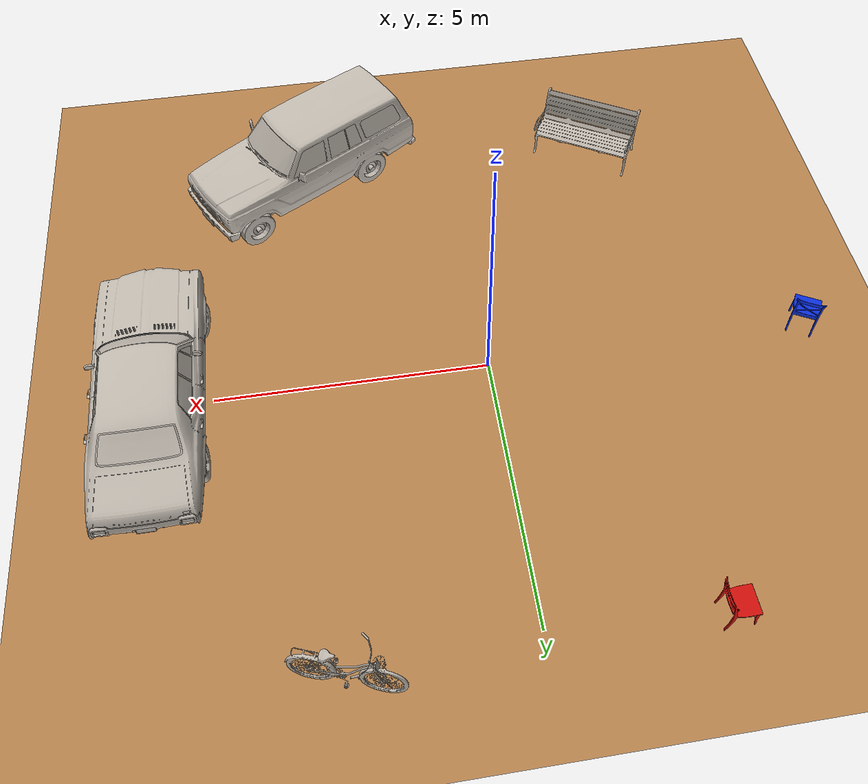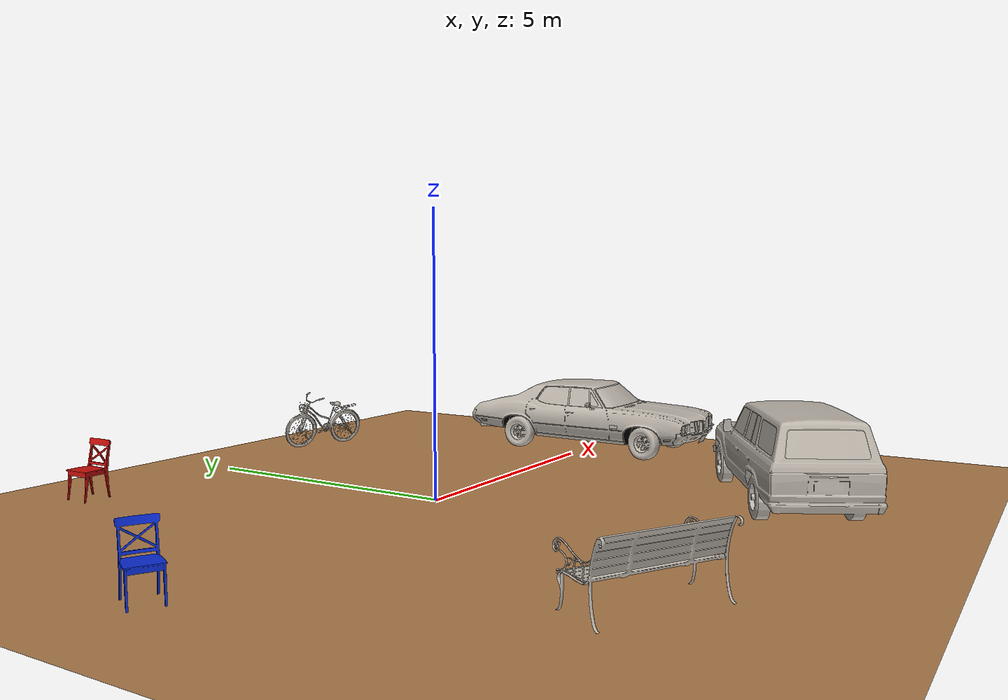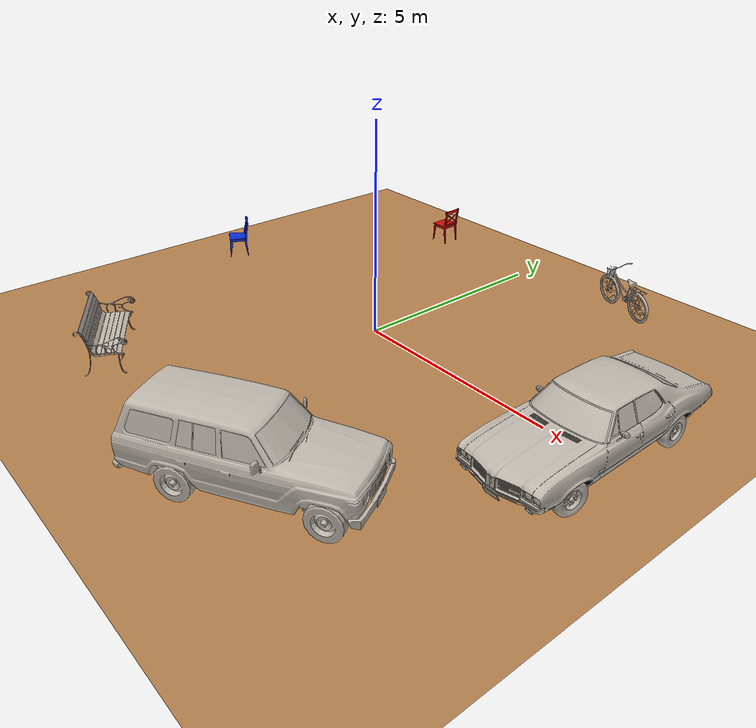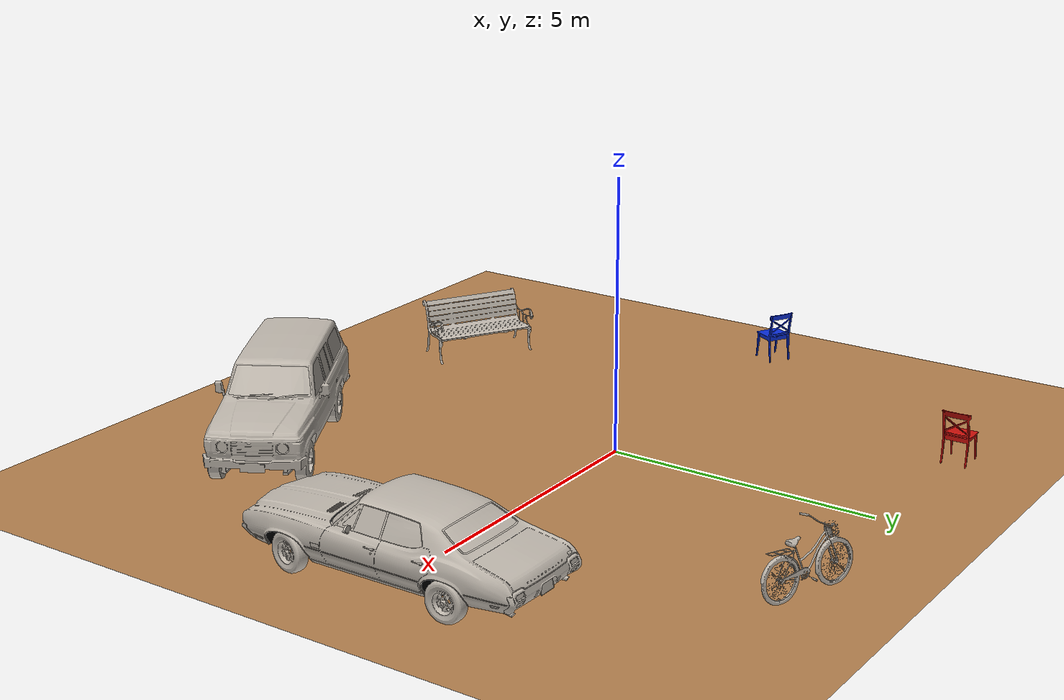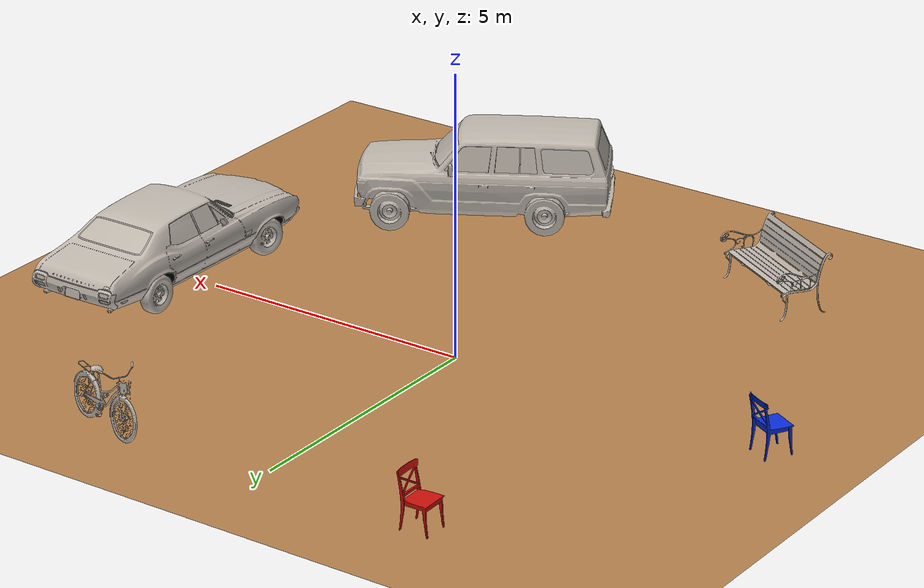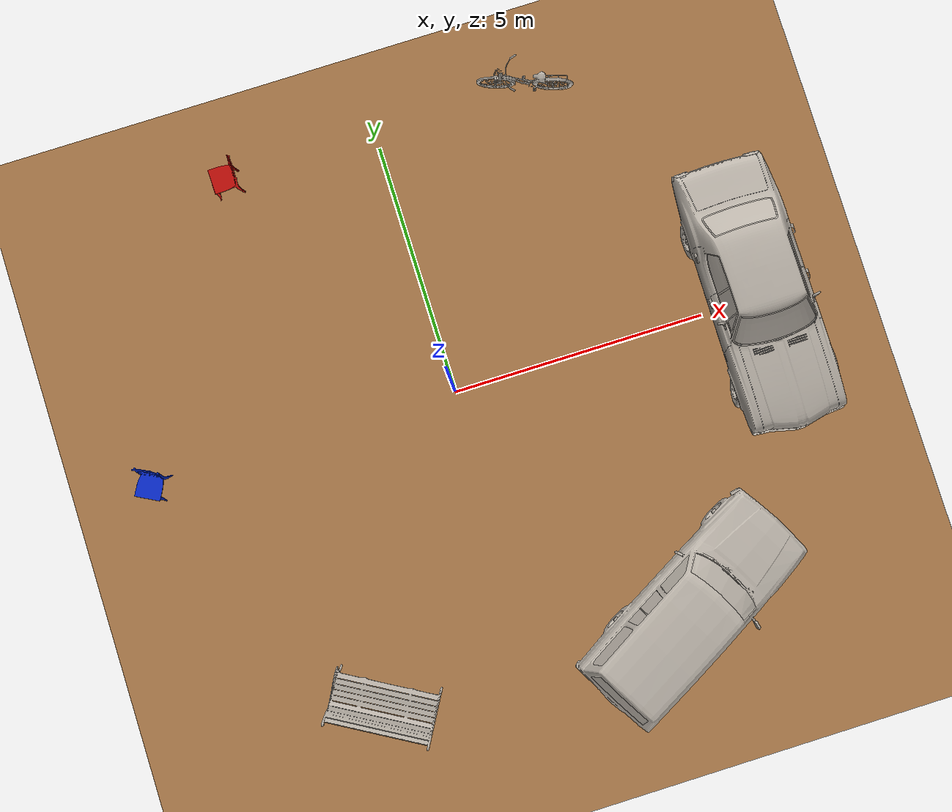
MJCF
<mujoco model="COCO object map">
  <compiler angle="degree" meshdir="meshes" texturedir="meshes" />
  <option timestep="0.002" gravity="0 0 -9.81" />
  <statistic center="0 0 0.6" extent="11" />
  <visual>
    <global azimuth="135" elevation="-25" />
    <quality shadowsize="2048" />
    <headlight ambient="0.35 0.35 0.35" diffuse="0.6 0.6 0.6" />
  </visual>
  <asset>
    <texture name="ground_birch" type="2d" file="birch_wood.png" />
    <material name="ground" texture="ground_birch" texuniform="true" texrepeat="1 1" reflectance="0.05" />
    <material name="red" rgba="0.8 0.06 0.04 1" />
    <material name="blue" rgba="0.04 0.18 0.85 1" />
    <mesh name="chair_mesh" file="chair.obj" />
    <mesh name="bench_mesh" file="bench.obj" />
    <texture name="bench_texture" type="2d" file="bench_texture.png" />
    <material name="bench_surface" texture="bench_texture" texuniform="false" rgba="1 1 1 1" />
    <mesh name="bicycle_mesh" file="bicycle.obj" />
    <texture name="bicycle_texture" type="2d" file="bicycle_texture.png" />
    <material name="bicycle_surface" texture="bicycle_texture" texuniform="false" rgba="1 1 1 1" />
    <mesh name="sedan_mesh" file="oldsmobile/oldsmobile_00.obj" />
    <texture name="oldsmobile_00_texture" type="2d" file="oldsmobile/oldsmobile_00.png" />
    <material name="oldsmobile_00_surface" rgba="1.0 1.0 1.0 1.0" specular="0.2" shininess="0.3" texture="oldsmobile_00_texture" texuniform="false" />
    <mesh name="sedan_mesh_01" file="oldsmobile/oldsmobile_01.obj" />
    <texture name="oldsmobile_01_texture" type="2d" file="oldsmobile/oldsmobile_01.png" />
    <material name="oldsmobile_01_surface" rgba="1.0 1.0 1.0 1.0" specular="0.2" shininess="0.3" texture="oldsmobile_01_texture" texuniform="false" />
    <mesh name="sedan_mesh_02" file="oldsmobile/oldsmobile_02.obj" />
    <texture name="oldsmobile_02_texture" type="2d" file="oldsmobile/oldsmobile_02.png" />
    <material name="oldsmobile_02_surface" rgba="1.0 1.0 1.0 1.0" specular="0.2" shininess="0.3" texture="oldsmobile_02_texture" texuniform="false" />
    <mesh name="sedan_mesh_03" file="oldsmobile/oldsmobile_03.obj" />
    <texture name="oldsmobile_03_texture" type="2d" file="oldsmobile/oldsmobile_03.png" />
    <material name="oldsmobile_03_surface" rgba="1.0 1.0 1.0 1.0" specular="0.2" shininess="0.3" texture="oldsmobile_03_texture" texuniform="false" />
    <mesh name="sedan_mesh_04" file="oldsmobile/oldsmobile_04.obj" />
    <texture name="oldsmobile_04_texture" type="2d" file="oldsmobile/oldsmobile_04.png" />
    <material name="oldsmobile_04_surface" rgba="1.0 1.0 1.0 1.0" specular="0.2" shininess="0.3" texture="oldsmobile_04_texture" texuniform="false" />
    <mesh name="sedan_mesh_05" file="oldsmobile/oldsmobile_05.obj" />
    <material name="oldsmobile_05_surface" rgba="0.0 0.0 0.0 1.0" specular="0.2" shininess="0.3" />
    <mesh name="sedan_mesh_06" file="oldsmobile/oldsmobile_06.obj" />
    <texture name="oldsmobile_06_texture" type="2d" file="oldsmobile/oldsmobile_06.png" />
    <material name="oldsmobile_06_surface" rgba="1.0 1.0 1.0 1.0" specular="0.2" shininess="0.3" texture="oldsmobile_06_texture" texuniform="false" />
    <mesh name="sedan_mesh_07" file="oldsmobile/oldsmobile_07.obj" />
    <texture name="oldsmobile_07_texture" type="2d" file="oldsmobile/oldsmobile_07.png" />
    <material name="oldsmobile_07_surface" rgba="1.0 1.0 1.0 1.0" specular="0.2" shininess="0.3" texture="oldsmobile_07_texture" texuniform="false" />
    <mesh name="suv_mesh" file="land_cruiser/land_cruiser_00.obj" />
    <texture name="land_cruiser_00_texture" type="2d" file="land_cruiser/land_cruiser_00.png" />
    <material name="land_cruiser_00_surface" rgba="1.0 1.0 1.0 1.0" specular="0.2" shininess="0.3" texture="land_cruiser_00_texture" texuniform="false" />
    <mesh name="suv_mesh_01" file="land_cruiser/land_cruiser_01.obj" />
    <texture name="land_cruiser_01_texture" type="2d" file="land_cruiser/land_cruiser_01.png" />
    <material name="land_cruiser_01_surface" rgba="1.0 1.0 1.0 1.0" specular="0.2" shininess="0.3" texture="land_cruiser_01_texture" texuniform="false" />
  </asset>
  <worldbody>
    <light name="key" pos="-3 -4 6" dir="0.3 0.4 -1" directional="true" />
    <light name="fill" pos="3 2 5" dir="-0.3 -0.2 -1" diffuse="0.4 0.4 0.4" />
    <camera name="overview" pos="10 -15 12" xyaxes="0.83205 0.5547 0 -0.267 0.400 0.876" />
    <geom friction="0.8 0.01 0.001" condim="3" name="floor" type="plane" size="10 10 0.05" material="ground" />
    <body name="chair_red" pos="-3.000000000 5.196152423 0" euler="0 0 210">
      <geom friction="0.8 0.01 0.001" condim="3" type="box" name="red_seat" pos="0 0 0.47" size="0.24 0.24 0.035" rgba="0 0 0 0" group="3" />
      <geom friction="0.8 0.01 0.001" condim="3" type="box" name="red_back" pos="0 0.215 0.76" size="0.24 0.025 0.255" rgba="0 0 0 0" group="3" />
      <geom friction="0.8 0.01 0.001" condim="3" type="box" pos="-0.19 -0.19 0.22" size="0.025 0.025 0.22" rgba="0 0 0 0" group="3" />
      <geom friction="0.8 0.01 0.001" condim="3" type="box" pos="0.19 -0.19 0.22" size="0.025 0.025 0.22" rgba="0 0 0 0" group="3" />
      <geom friction="0.8 0.01 0.001" condim="3" type="box" pos="-0.19 0.19 0.22" size="0.025 0.025 0.22" rgba="0 0 0 0" group="3" />
      <geom friction="0.8 0.01 0.001" condim="3" type="box" pos="0.19 0.19 0.22" size="0.025 0.025 0.22" rgba="0 0 0 0" group="3" />
      <geom name="chair_red_visual" type="mesh" mesh="chair_mesh" material="red" contype="0" conaffinity="0" group="2" euler="0 0 -90" />
    </body>
    <body name="chair_blue" pos="-6.000000000 0.000000000 0" euler="0 0 270">
      <geom friction="0.8 0.01 0.001" condim="3" type="box" name="blue_seat" pos="0 0 0.47" size="0.24 0.24 0.035" rgba="0 0 0 0" group="3" />
      <geom friction="0.8 0.01 0.001" condim="3" type="box" name="blue_back" pos="0 0.215 0.76" size="0.24 0.025 0.255" rgba="0 0 0 0" group="3" />
      <geom friction="0.8 0.01 0.001" condim="3" type="box" pos="-0.19 -0.19 0.22" size="0.025 0.025 0.22" rgba="0 0 0 0" group="3" />
      <geom friction="0.8 0.01 0.001" condim="3" type="box" pos="0.19 -0.19 0.22" size="0.025 0.025 0.22" rgba="0 0 0 0" group="3" />
      <geom friction="0.8 0.01 0.001" condim="3" type="box" pos="-0.19 0.19 0.22" size="0.025 0.025 0.22" rgba="0 0 0 0" group="3" />
      <geom friction="0.8 0.01 0.001" condim="3" type="box" pos="0.19 0.19 0.22" size="0.025 0.025 0.22" rgba="0 0 0 0" group="3" />
      <geom name="chair_blue_visual" type="mesh" mesh="chair_mesh" material="blue" contype="0" conaffinity="0" group="2" euler="0 0 -90" />
    </body>
    <body name="bench" pos="-3.000000000 -5.196152423 0" euler="0 0 330">
      <geom name="bench_visual" type="mesh" mesh="bench_mesh" material="bench_surface" contype="0" conaffinity="0" group="2" />
      <geom name="bench_seat_collision" type="box" pos="0 0.07 0.50" size="0.92 0.32 0.035" rgba="0 0 0 0" group="3" friction="0.8 0.01 0.001" condim="3" />
      <geom name="bench_back_collision" type="box" pos="0 -0.35 0.83" size="0.91 0.025 0.25" euler="20 0 0" rgba="0 0 0 0" group="3" friction="0.8 0.01 0.001" condim="3" />
      <geom type="box" pos="-0.92 -0.36 0.235" size="0.035 0.04 0.235" rgba="0 0 0 0" group="3" friction="0.8 0.01 0.001" condim="3" />
      <geom type="box" pos="0.92 -0.36 0.235" size="0.035 0.04 0.235" rgba="0 0 0 0" group="3" friction="0.8 0.01 0.001" condim="3" />
      <geom type="box" pos="-0.92 0.36 0.235" size="0.035 0.04 0.235" rgba="0 0 0 0" group="3" friction="0.8 0.01 0.001" condim="3" />
      <geom type="box" pos="0.92 0.36 0.235" size="0.035 0.04 0.235" rgba="0 0 0 0" group="3" friction="0.8 0.01 0.001" condim="3" />
    </body>
    <body name="sedan" pos="6.000000000 0.000000000 0" euler="0 0 90">
      <geom name="sedan_visual" type="mesh" mesh="sedan_mesh" material="oldsmobile_00_surface" contype="0" conaffinity="0" group="2" />
      <geom name="sedan_visual_01" type="mesh" mesh="sedan_mesh_01" material="oldsmobile_01_surface" contype="0" conaffinity="0" group="2" />
      <geom name="sedan_visual_02" type="mesh" mesh="sedan_mesh_02" material="oldsmobile_02_surface" contype="0" conaffinity="0" group="2" />
      <geom name="sedan_visual_03" type="mesh" mesh="sedan_mesh_03" material="oldsmobile_03_surface" contype="0" conaffinity="0" group="2" />
      <geom name="sedan_visual_04" type="mesh" mesh="sedan_mesh_04" material="oldsmobile_04_surface" contype="0" conaffinity="0" group="2" />
      <geom name="sedan_visual_05" type="mesh" mesh="sedan_mesh_05" material="oldsmobile_05_surface" contype="0" conaffinity="0" group="2" />
      <geom name="sedan_visual_06" type="mesh" mesh="sedan_mesh_06" material="oldsmobile_06_surface" contype="0" conaffinity="0" group="2" />
      <geom name="sedan_visual_07" type="mesh" mesh="sedan_mesh_07" material="oldsmobile_07_surface" contype="0" conaffinity="0" group="2" />
      <geom name="sedan_collision" type="box" pos="0 0 0.730178778874704" size="2.65 1.0041435226400452 0.730178778874704" rgba="0 0 0 0" group="3" friction="0.8 0.01 0.001" condim="3" />
    </body>
    <body name="bicycle" pos="3.000000000 5.196152423 0" euler="0 0 150">
      <geom name="bicycle_visual" type="mesh" mesh="bicycle_mesh" material="bicycle_surface" contype="0" conaffinity="0" group="2" />
      <geom type="box" pos="0 0 0.59" size="0.925 0.09 0.59" rgba="0 0 0 0" group="3" friction="0.8 0.01 0.001" condim="3" />
    </body>
    <body name="suv" pos="3.000000000 -5.196152423 0" euler="0 0 390">
      <geom name="suv_visual" type="mesh" mesh="suv_mesh" material="land_cruiser_00_surface" contype="0" conaffinity="0" group="2" />
      <geom name="suv_visual_01" type="mesh" mesh="suv_mesh_01" material="land_cruiser_01_surface" contype="0" conaffinity="0" group="2" />
      <geom name="suv_collision" type="box" pos="0 0 0.8670351426194485" size="2.3 1.0173566951064765 0.8670351426194485" rgba="0 0 0 0" group="3" friction="0.8 0.01 0.001" condim="3" />
    </body>
  </worldbody>
</mujoco>
